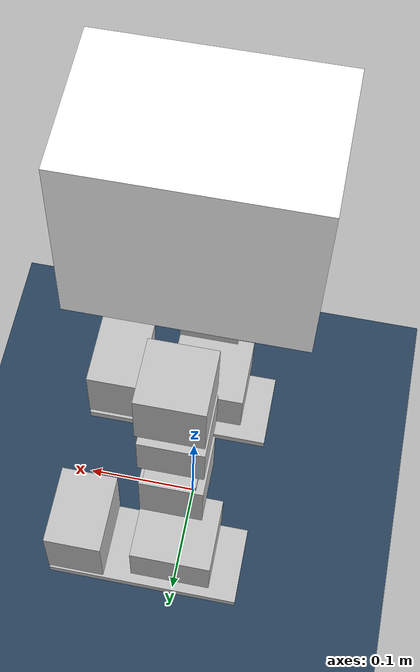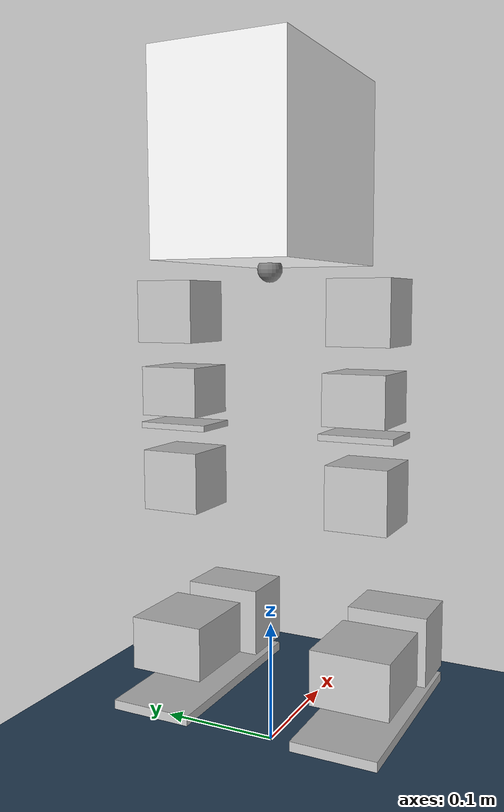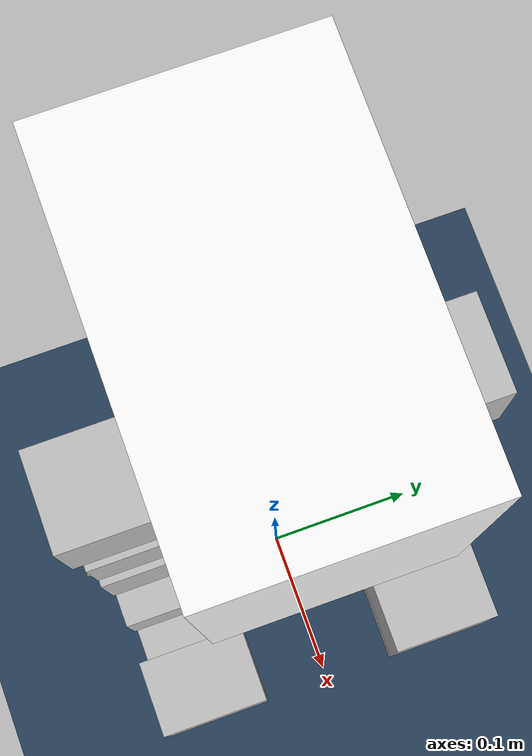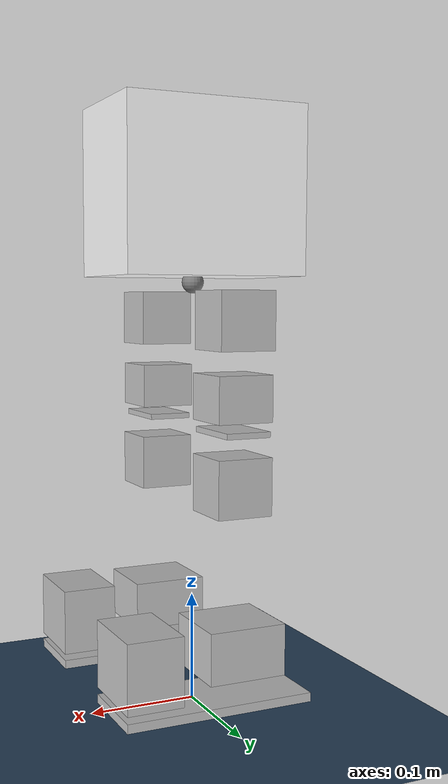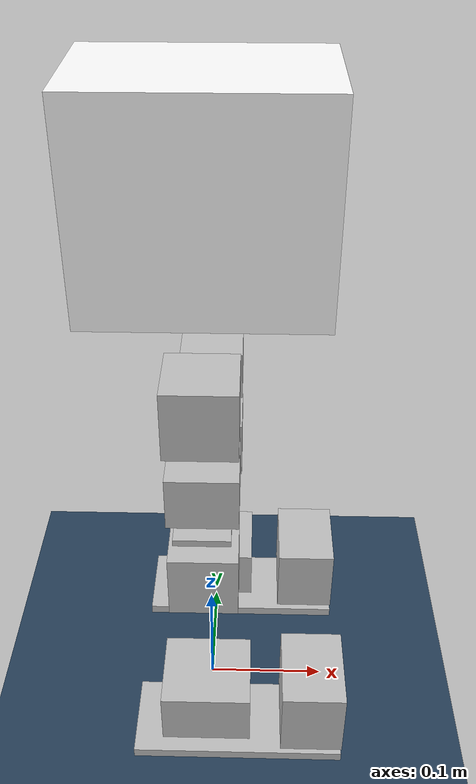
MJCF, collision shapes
<mujoco model="pi">
  <compiler angle="radian" meshdir="../meshes/"/>

  <default>
    <default class="collision">
       <geom group="1"/>
      </default>
    <default class="leg_motor">
      <joint damping="0.01" armature="0.044277" frictionloss="0.01" />
    </default>
  </default>

  <asset>
    <mesh name="base_link" content_type="model/stl" file="baselink_1.STL"/>
    <mesh name="l_hip_pitch_link" content_type="model/stl" file="l_hip_pitch_link.STL"/>
    <mesh name="l_hip_roll_link" content_type="model/stl" file="l_hip_roll_link.STL"/>
    <mesh name="l_thigh_link" content_type="model/stl" file="l_thigh_link.STL"/>
    <mesh name="l_calf_link" content_type="model/stl" file="l_calf_link.STL"/>
    <mesh name="l_ankle_pitch_link" content_type="model/stl" file="l_ankle_pitch_link.STL"/>
    <mesh name="l_ankle_roll_link" content_type="model/stl" file="l_ankle_roll_link.STL"/>
    <mesh name="r_hip_pitch_link" content_type="model/stl" file="r_hip_pitch_link.STL"/>
    <mesh name="r_hip_roll_link" content_type="model/stl" file="r_hip_roll_link.STL"/>
    <mesh name="r_thigh_link" content_type="model/stl" file="r_thigh_link.STL"/>
    <mesh name="r_calf_link" content_type="model/stl" file="r_calf_link.STL"/>
    <mesh name="r_ankle_pitch_link" content_type="model/stl" file="r_ankle_pitch_link.STL"/>
    <mesh name="r_ankle_roll_link" content_type="model/stl" file="r_ankle_roll_link.STL"/>
  </asset>

  <worldbody>
    <body name="base_link" pos="0 0 0.39">
      <site name="imu" size="0.01" pos="-0.0 -0.0 0.0" />
      <inertial pos="0.00511413 -0.000220982 0.0966471" quat="0.999251 0.00280782 0.0374162 0.0094174" mass="3.44087" diaginertia="0.0459459 0.0431088 0.00967703"/>
      <joint name="floating_base_joint" type="free" limited="false" actuatorfrclimited="false"/>
      <geom type="mesh" contype="0" conaffinity="0" group="1" density="0" rgba="1 1 1 1" mesh="base_link"/>
      <geom size="0.085 0.055 0.075" pos="0 0 0.08" type="box" rgba="1 1 1 1" class="collision"/>
      <body name="l_hip_pitch_link" pos="-5.1979e-05 0.0233 -0.033">
        <inertial pos="0.00086268 0.0544191 -0.00025859" quat="-0.0385995 0.705608 0.0295548 0.706932" mass="0.389686" diaginertia="0.000128344 0.000105107 0.000100719"/>
        <joint name="l_hip_pitch_joint" pos="0 0 0" axis="0 1 0" range="-1.5 1.5" actuatorfrcrange="-21 21" class="leg_motor"/>
        <geom type="mesh" contype="0" conaffinity="0" group="1" density="0" rgba="0.75294 0.75294 0.75294 1" mesh="l_hip_pitch_link"/>
        <geom size="0.025 0.025 0.025" pos="0 0.06 0" type="box" rgba="0.75294 0.75294 0.75294 1" class="collision"/>
        <body name="l_hip_roll_link" pos="0 0.0568 0">
          <inertial pos="-0.00207707 0.00026598 -0.0608194" quat="0.699248 -0.0752466 -0.0779987 0.706616" mass="0.388516" diaginertia="0.000333211 0.000277592 0.000128507"/>
          <joint name="l_hip_roll_joint" pos="0 0 0" axis="1 0 0" range="-0.38 1.2" actuatorfrcrange="-21 21" class="leg_motor"/>
          <geom type="mesh" contype="0" conaffinity="0" group="1" density="0" rgba="0.75294 0.75294 0.75294 1" mesh="l_hip_roll_link"/>
          <geom size="0.025 0.025 0.02" pos="0 0 -0.065" type="box" rgba="0.75294 0.75294 0.75294 1" class="collision"/>
          <body name="l_thigh_link" pos="0 0 -0.06925">
            <inertial pos="0 -0.00115822 -0.047559" quat="0.67539 0.737461 0 0" mass="0.112709" diaginertia="0.00012497 9.46626e-05 5.79174e-05"/>
            <joint name="l_thigh_joint" pos="0 0 0" axis="0 0 1" range="-1 1" actuatorfrcrange="-21 21" class="leg_motor"/>
            <geom type="mesh" contype="0" conaffinity="0" group="1" density="0" rgba="0.75294 0.75294 0.75294 1" mesh="l_thigh_link"/>
            <geom size="0.02 0.03 0.0025" pos="0 0 -0.025" type="box" rgba="0.75294 0.75294 0.75294 1" class="collision"/>
            <body name="l_calf_link" pos="0 0 -0.07025">
              <inertial pos="0.00026627 0.00386537 -0.0697121" quat="0.999984 0.00311529 -0.000122098 0.00472349" mass="0.813742" diaginertia="0.00352123 0.00349959 0.000174551"/>
              <joint name="l_calf_joint" pos="0 0 0" axis="0 1 0" range="0 2.2" actuatorfrcrange="-21 21" class="leg_motor"/>
              <geom type="mesh" contype="0" conaffinity="0" group="1" density="0" rgba="0.75294 0.75294 0.75294 1" mesh="l_calf_link"/>
              <geom size="0.025 0.025 0.025" type="box" rgba="0.75294 0.75294 0.75294 1" class="collision"/>
              <body name="l_ankle_pitch_link" pos="0 0 -0.14">
                <inertial pos="0.00467932 -0.00077699 0" quat="-0.00221869 0.707103 0.00221869 0.707103" mass="0.175924" diaginertia="0.00030766 0.000221794 0.000119806"/>
                <joint name="l_ankle_pitch_joint" pos="0 0 0" axis="0 1 0" range="-0.8 0.8" actuatorfrcrange="-21 21" class="leg_motor"/>
                <geom type="mesh" contype="0" conaffinity="0" group="1" density="0" rgba="0.75294 0.75294 0.75294 1" mesh="l_ankle_pitch_link"/>
                <geom size="0.035 0.0325 0.0225" type="box" rgba="0.75294 0.75294 0.75294 1" class="collision"/>
                <body name="l_ankle_roll_link" pos="0.07525 0 0">
                  <inertial pos="-0.0238368 0.00019256 -0.0144649" quat="0.5599 0.43068 0.434161 0.559045" mass="0.518685" diaginertia="0.00113169 0.00103133 0.000283273"/>
                  <joint name="l_ankle_roll_joint" pos="0 0 0" axis="1 0 0" range="-0.6 0.6" actuatorfrcrange="-21 21" class="leg_motor"/>
                  <geom type="mesh" contype="0" conaffinity="0" group="1" density="0" rgba="0.75294 0.75294 0.75294 1" mesh="l_ankle_roll_link"/>
                  <geom size="0.085 0.035 0.004" pos="-0.05 0 -0.045" type="box" rgba="0.75294 0.75294 0.75294 1" class="collision"/>
                  <geom size="0.025 0.035 0.03" pos="0.01 0 -0.005" type="box" rgba="0.75294 0.75294 0.75294 1" class="collision"/>
                </body>
              </body>
            </body>
          </body>
        </body>
      </body>
      <body name="r_hip_pitch_link" pos="-5.1979e-05 -0.0233 -0.033">
        <inertial pos="0.00089428 -0.0552774 -0.00027276" quat="-0.0190163 0.705972 -0.0283274 0.707417" mass="0.369998" diaginertia="0.000108547 9.80557e-05 8.30673e-05"/>
        <joint name="r_hip_pitch_joint" pos="0 0 0" axis="0 1 0" range="-1.5 1.5" actuatorfrcrange="-21 21" class="leg_motor"/>
        <geom type="mesh" contype="0" conaffinity="0" group="1" density="0" rgba="0.75294 0.75294 0.75294 1" mesh="r_hip_pitch_link"/>
        <geom size="0.025 0.025 0.025" pos="0 -0.06 0" type="box" rgba="0.75294 0.75294 0.75294 1" class="collision"/>
        <body name="r_hip_roll_link" pos="0.00025 -0.0568 0">
          <inertial pos="-0.00180153 0.00025956 -0.0608194" quat="0.705929 -0.0791259 -0.0825487 0.698992" mass="0.388516" diaginertia="0.000334209 0.00027814 0.000128441"/>
          <joint name="r_hip_roll_joint" pos="0 0 0" axis="1 0 0" range="-0.38 1.2" actuatorfrcrange="-21 21" class="leg_motor"/>
          <geom type="mesh" contype="0" conaffinity="0" group="1" density="0" rgba="0.75294 0.75294 0.75294 1" mesh="r_hip_roll_link"/>
          <geom size="0.025 0.025 0.02" pos="0 0 -0.065" type="box" rgba="0.75294 0.75294 0.75294 1" class="collision"/>
          <body name="r_thigh_link" pos="-0.00025 0 -0.06925">
            <inertial pos="0 0.00116854 -0.047559" quat="0.73728 0.675588 0 0" mass="0.112709" diaginertia="0.00012496 9.46591e-05 5.79209e-05"/>
            <joint name="r_thigh_joint" pos="0 0 0" axis="0 0 1" range="-1 1" actuatorfrcrange="-21 21" class="leg_motor"/>
            <geom type="mesh" contype="0" conaffinity="0" group="1" density="0" rgba="0.75294 0.75294 0.75294 1" mesh="r_thigh_link"/>
            <geom size="0.02 0.03 0.0025" pos="0 0 -0.025" type="box" rgba="0.75294 0.75294 0.75294 1" class="collision"/>
            <body name="r_calf_link" pos="0 -0.0027 -0.07025">
              <inertial pos="-0.00026627 -0.00116537 -0.0697121" quat="0.999984 -0.00311529 0.000122098 0.00472349" mass="0.813742" diaginertia="0.00352123 0.00349959 0.000174551"/>
              <joint name="r_calf_joint" pos="0 0 0" axis="0 1 0" range="0 2.2" actuatorfrcrange="-21 21" class="leg_motor"/>
              <geom type="mesh" contype="0" conaffinity="0" group="1" density="0" rgba="0.75294 0.75294 0.75294 1" mesh="r_calf_link"/>
              <geom size="0.025 0.025 0.025" type="box" rgba="0.75294 0.75294 0.75294 1" class="collision"/>
              <body name="r_ankle_pitch_link" pos="0 0 -0.14">
                <inertial pos="0.00467932 0.00347699 0" quat="0.00221869 0.707103 -0.00221869 0.707103" mass="0.175924" diaginertia="0.00030766 0.000221794 0.000119806"/>
                <joint name="r_ankle_pitch_joint" pos="0 0 0" axis="0 1 0" range="-0.8 0.8" actuatorfrcrange="-21 21" class="leg_motor"/>
                <geom type="mesh" contype="0" conaffinity="0" group="1" density="0" rgba="0.75294 0.75294 0.75294 1" mesh="r_ankle_pitch_link"/>
                <geom size="0.035 0.0325 0.0225" type="box" rgba="0.75294 0.75294 0.75294 1" class="collision"/>
                <body name="r_ankle_roll_link" pos="0.07525 0.0027 0">
                  <inertial pos="-0.0238368 0.00019256 -0.0144649" quat="0.5599 0.43068 0.434161 0.559045" mass="0.518685" diaginertia="0.00113169 0.00103133 0.000283273"/>
                  <joint name="r_ankle_roll_joint" pos="0 0 0" axis="1 0 0" range="-0.6 0.6" actuatorfrcrange="-21 21" class="leg_motor"/>
                  <geom type="mesh" contype="0" conaffinity="0" group="1" density="0" rgba="0.75294 0.75294 0.75294 1" mesh="r_ankle_roll_link"/>
                  <geom size="0.085 0.035 0.004" pos="-0.05 0 -0.045" type="box" rgba="0.75294 0.75294 0.75294 1" class="collision"/>
                  <geom size="0.025 0.035 0.03" pos="0.01 0 -0.005" type="box" rgba="0.75294 0.75294 0.75294 1" class="collision"/>
                </body>
              </body>
            </body>
          </body>
        </body>
      </body>
    </body>
  </worldbody>
  <actuator>
      <motor name="l_hip_pitch_joint" joint="l_hip_pitch_joint" gear="1" ctrllimited="true" ctrlrange="-20 20" />
      <motor name="l_hip_roll_joint" joint="l_hip_roll_joint" gear="1" ctrllimited="true" ctrlrange="-20 20" />
      <motor name="l_thigh_joint" joint="l_thigh_joint" gear="1" ctrllimited="true" ctrlrange="-20 20" />
      <motor name="l_calf_joint" joint="l_calf_joint" gear="1" ctrllimited="true" ctrlrange="-20 20" />
      <motor name="l_ankle_pitch_joint" joint="l_ankle_pitch_joint" gear="1" ctrllimited="true" ctrlrange="-20 20" />
      <motor name="l_ankle_roll_joint" joint="l_ankle_roll_joint" gear="1" ctrllimited="true" ctrlrange="-20 20" />

      <motor name="r_hip_pitch_joint" joint="r_hip_pitch_joint" gear="1" ctrllimited="true" ctrlrange="-20 20" />
      <motor name="r_hip_roll_joint" joint="r_hip_roll_joint" gear="1" ctrllimited="true" ctrlrange="-20 20" />
      <motor name="r_thigh_joint" joint="r_thigh_joint" gear="1" ctrllimited="true" ctrlrange="-20 20" />
      <motor name="r_calf_joint" joint="r_calf_joint" gear="1" ctrllimited="true" ctrlrange="-20 20" />
      <motor name="r_ankle_pitch_joint" joint="r_ankle_pitch_joint" gear="1" ctrllimited="true" ctrlrange="-20 20" />
      <motor name="r_ankle_roll_joint" joint="r_ankle_roll_joint" gear="1" ctrllimited="true" ctrlrange="-20 20" />
   </actuator>

    <sensor>
      <!-- Position sensors -->
      <actuatorpos name="l_hip_pitch_joint_p" actuator="l_hip_pitch_joint" user="13"/>
      <actuatorpos name="l_hip_roll_joint_p" actuator="l_hip_roll_joint" user="13"/>
      <actuatorpos name="l_thigh_joint_p" actuator="l_thigh_joint" user="13"/>
      <actuatorpos name="l_calf_joint_p" actuator="l_calf_joint" user="13"/>
      <actuatorpos name="l_ankle_pitch_joint_p" actuator="l_ankle_pitch_joint" user="13"/>
      <actuatorpos name="l_ankle_roll_joint_p" actuator="l_ankle_roll_joint" user="13"/>

      <actuatorpos name="r_hip_pitch_joint_p" actuator="r_hip_pitch_joint" user="13"/>
      <actuatorpos name="r_hip_roll_joint_p" actuator="r_hip_roll_joint" user="13"/>
      <actuatorpos name="r_thigh_joint_p" actuator="r_thigh_joint" user="13"/>
      <actuatorpos name="r_calf_joint_p" actuator="r_calf_joint" user="13"/>
      <actuatorpos name="r_ankle_pitch_joint_p" actuator="r_ankle_pitch_joint" user="13"/>
      <actuatorpos name="r_ankle_roll_joint_p" actuator="r_ankle_roll_joint" user="13"/>

      <!-- Velocity sensors -->
      <actuatorvel name="l_hip_pitch_joint_v" actuator="l_hip_pitch_joint" user="13" noise="1e-3"/>
      <actuatorvel name="l_hip_roll_joint_v" actuator="l_hip_roll_joint" user="13" noise="1e-3"/>
      <actuatorvel name="l_thigh_joint_v" actuator="l_thigh_joint" user="13" noise="1e-3"/>
      <actuatorvel name="l_calf_joint_v" actuator="l_calf_joint" user="13" noise="1e-3"/>
      <actuatorvel name="l_ankle_pitch_joint_v" actuator="l_ankle_pitch_joint" user="13" noise="1e-3"/>
      <actuatorvel name="l_ankle_roll_joint_v" actuator="l_ankle_roll_joint" user="13" noise="1e-3"/>

      <actuatorvel name="r_hip_pitch_joint_v" actuator="r_hip_pitch_joint" user="13" noise="1e-3"/>
      <actuatorvel name="r_hip_roll_joint_v" actuator="r_hip_roll_joint" user="13" noise="1e-3"/>
      <actuatorvel name="r_thigh_joint_v" actuator="r_thigh_joint" user="13" noise="1e-3"/>
      <actuatorvel name="r_calf_joint_v" actuator="r_calf_joint" user="13" noise="1e-3"/>
      <actuatorvel name="r_ankle_pitch_joint_v" actuator="r_ankle_pitch_joint" user="13" noise="1e-3"/>
      <actuatorvel name="r_ankle_roll_joint_v" actuator="r_ankle_roll_joint" user="13" noise="1e-3"/>

      <!-- Force sensors -->
      <actuatorfrc name="l_hip_pitch_joint_f" actuator="l_hip_pitch_joint" user="13" noise="1e-3"/>
      <actuatorfrc name="l_hip_roll_joint_f" actuator="l_hip_roll_joint" user="13" noise="1e-3"/>
      <actuatorfrc name="l_thigh_joint_f" actuator="l_thigh_joint" user="13" noise="1e-3"/>
      <actuatorfrc name="l_calf_joint_f" actuator="l_calf_joint" user="13" noise="1e-3"/>
      <actuatorfrc name="l_ankle_pitch_joint_f" actuator="l_ankle_pitch_joint" user="13" noise="1e-3"/>
      <actuatorfrc name="l_ankle_roll_joint_f" actuator="l_ankle_roll_joint" user="13" noise="1e-3"/>

      <actuatorfrc name="r_hip_pitch_joint_f" actuator="r_hip_pitch_joint" user="13" noise="1e-3"/>
      <actuatorfrc name="r_hip_roll_joint_f" actuator="r_hip_roll_joint" user="13" noise="1e-3"/>
      <actuatorfrc name="r_thigh_joint_f" actuator="r_thigh_joint" user="13" noise="1e-3"/>
      <actuatorfrc name="r_calf_joint_f" actuator="r_calf_joint" user="13" noise="1e-3"/>
      <actuatorfrc name="r_ankle_pitch_joint_f" actuator="r_ankle_pitch_joint" user="13" noise="1e-3"/>
      <actuatorfrc name="r_ankle_roll_joint_f" actuator="r_ankle_roll_joint" user="13" noise="1e-3"/>

      <framequat name='orientation' objtype='site' noise='0.001' objname='imu'/>
      <framepos name='position' objtype='site' noise='0.001' objname='imu'/>
      <gyro name='angular-velocity' site='imu' noise='0.005' cutoff='34.9'/>
      <velocimeter name='linear-velocity' site='imu' noise='0.001' cutoff='30'/>
      <accelerometer name='linear-acceleration' site='imu' noise='0.005' cutoff='157'/>
      <magnetometer name='magnetometer' site='imu'/>
    </sensor>

   <!-- setup scene -->
  <statistic center="1.0 0.7 1.0" extent="0.8"/>
  <visual>
    <headlight diffuse="0.6 0.6 0.6" ambient="0.1 0.1 0.1" specular="0.9 0.9 0.9"/>
    <rgba haze="0.15 0.25 0.35 1"/>
    <global azimuth="-140" elevation="-20"/>
  </visual>
  <asset>
    <texture type="skybox" builtin="flat" rgb1="0 0 0" rgb2="0 0 0" width="512" height="3072"/>
    <texture type="2d" name="groundplane" builtin="checker" mark="edge" rgb1="0.2 0.3 0.4" rgb2="0.1 0.2 0.3" markrgb="0.8 0.8 0.8" width="300" height="300"/>
    <material name="groundplane" texture="groundplane" texuniform="true" texrepeat="5 5" reflectance="0.2"/>
  </asset>
  <worldbody>
    <light pos="1 0 3.5" dir="0 0 -1" directional="true"/>
    <geom contype="15" conaffinity="15"  name="floor" size="0 0 0.05" type="plane" material="groundplane"/>
  </worldbody>

</mujoco>
